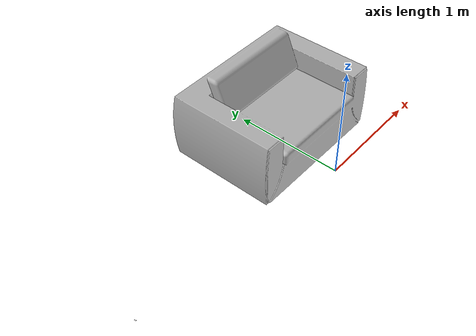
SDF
<?xml version="1.0"?>

<sdf version="1.6">
  <model name='sofa_green'>
    <static>true</static>
    <link name="body">

        <visual name="visual">
          <geometry>
            <mesh><uri>model://models/sofa_green/meshes/sofa_green.dae</uri></mesh>
          </geometry>
        </visual>

        <collision name="collision">
          <geometry>
            <mesh><uri>model://models/sofa_green/meshes/sofa_green.dae</uri></mesh>
          </geometry>
        </collision>

    </link>
  </model>
</sdf>
